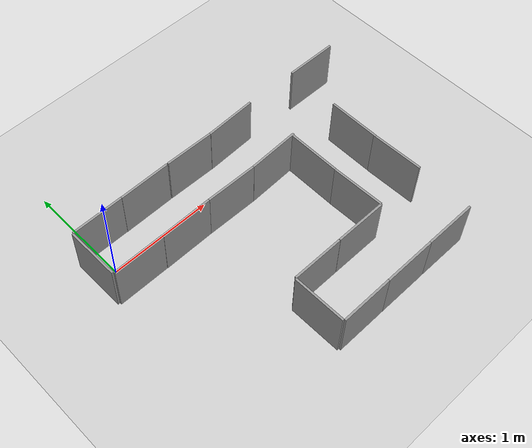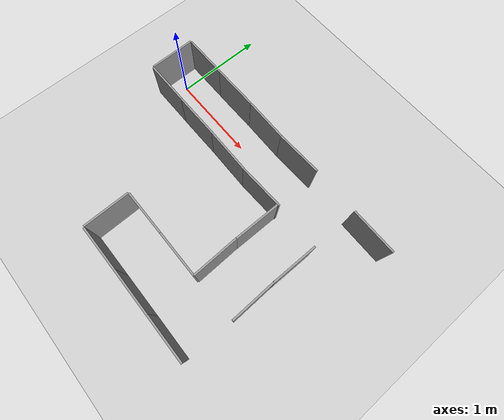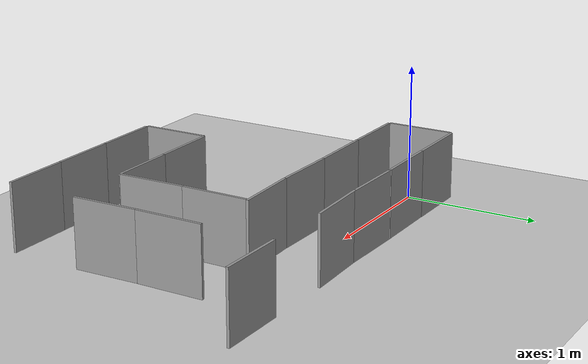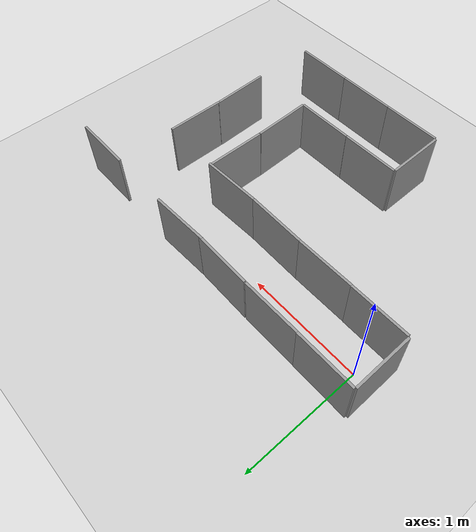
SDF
<sdf version="1.7">
 <world name="default">
  <model name="ground_plane">
   <static>1</static>
   <link name="link">
    <collision name="collision">
     <geometry><plane><normal>0 0 1</normal><size>100 100</size></plane></geometry>
     <surface><friction><ode><mu>100</mu><mu2>50</mu2></ode></friction></surface>
    </collision>
    <visual name="visual">
     <cast_shadows>0</cast_shadows>
     <geometry><plane><normal>0 0 1</normal><size>100 100</size></plane></geometry>
     <material>
      <script><uri>file://media/materials/scripts/gazebo.material</uri><name>Gazebo/Grey</name></script>
     </material>
    </visual>
   </link>
  </model>
  <model name="hsl_module_1">
   <link name="link_2_clone">
    <inertial>
     <mass>1</mass>
     <inertia><ixx>0.01</ixx><ixy>0</ixy><ixz>0</ixz><iyy>0.02</iyy><iyz>0</iyz><izz>0.01</izz></inertia>
    </inertial>
    <pose>0.088798 -0.257146 0 0 -0 0</pose>
    <visual name="visual">
     <geometry><box><size>0.5 0.02 0.5</size></box></geometry>
     <material>
      <lighting>1</lighting>
      <script><uri>file://media/materials/scripts/gazebo.material</uri><name>Gazebo/Grey</name></script>
      <shader type="pixel"><normal_map>__default__</normal_map></shader>
      <ambient>0.3 0.3 0.3 1</ambient>
      <diffuse>0.7 0.7 0.7 1</diffuse>
      <specular>0.01 0.01 0.01 1</specular>
      <emissive>0 0 0 1</emissive>
     </material>
    </visual>
    <collision name="collision">
     <geometry><box><size>0.5 0.02 0.5</size></box></geometry>
     <surface>
      <friction>
       <ode><mu>1</mu><mu2>1</mu2><fdir1>0 0 0</fdir1><slip1>0</slip1><slip2>0</slip2></ode>
       <torsional>
        <coefficient>1</coefficient>
        <patch_radius>0</patch_radius>
        <surface_radius>0</surface_radius>
        <use_patch_radius>1</use_patch_radius>
        <ode><slip>0</slip></ode>
       </torsional>
      </friction>
      <bounce><restitution_coefficient>0</restitution_coefficient><threshold>1e+06</threshold></bounce>
      <contact>
       <collide_without_contact>0</collide_without_contact>
       <collide_without_contact_bitmask>1</collide_without_contact_bitmask>
       <collide_bitmask>1</collide_bitmask>
       <ode>
        <soft_cfm>0</soft_cfm>
        <soft_erp>0.2</soft_erp>
        <kp>1e+13</kp>
        <kd>1</kd>
        <max_vel>0.01</max_vel>
        <min_depth>0</min_depth>
       </ode>
       <bullet>
        <split_impulse>1</split_impulse>
        <split_impulse_penetration_threshold>-0.01</split_impulse_penetration_threshold>
        <soft_cfm>0</soft_cfm>
        <soft_erp>0.2</soft_erp>
        <kp>1e+13</kp>
        <kd>1</kd>
       </bullet>
      </contact>
     </surface>
    </collision>
   </link>
   <link name="link_2_clone_clone">
    <inertial>
     <mass>1</mass>
     <inertia><ixx>0.01</ixx><ixy>0</ixy><ixz>0</ixz><iyy>0.02</iyy><iyz>0</iyz><izz>0.01</izz></inertia>
    </inertial>
    <pose>-0.171704 0.000465 0 0 -0 1.57697</pose>
    <visual name="visual">
     <geometry><box><size>0.5 0.02 0.5</size></box></geometry>
     <material>
      <lighting>1</lighting>
      <script><uri>file://media/materials/scripts/gazebo.material</uri><name>Gazebo/Grey</name></script>
      <shader type="pixel"><normal_map>__default__</normal_map></shader>
      <ambient>0.3 0.3 0.3 1</ambient>
      <diffuse>0.7 0.7 0.7 1</diffuse>
      <specular>0.01 0.01 0.01 1</specular>
      <emissive>0 0 0 1</emissive>
     </material>
    </visual>
    <collision name="collision">
     <geometry><box><size>0.5 0.02 0.5</size></box></geometry>
     <surface>
      <friction>
       <ode><mu>1</mu><mu2>1</mu2><fdir1>0 0 0</fdir1><slip1>0</slip1><slip2>0</slip2></ode>
       <torsional>
        <coefficient>1</coefficient>
        <patch_radius>0</patch_radius>
        <surface_radius>0</surface_radius>
        <use_patch_radius>1</use_patch_radius>
        <ode><slip>0</slip></ode>
       </torsional>
      </friction>
      <bounce><restitution_coefficient>0</restitution_coefficient><threshold>1e+06</threshold></bounce>
      <contact>
       <collide_without_contact>0</collide_without_contact>
       <collide_without_contact_bitmask>1</collide_without_contact_bitmask>
       <collide_bitmask>1</collide_bitmask>
       <ode>
        <soft_cfm>0</soft_cfm>
        <soft_erp>0.2</soft_erp>
        <kp>1e+13</kp>
        <kd>1</kd>
        <max_vel>0.01</max_vel>
        <min_depth>0</min_depth>
       </ode>
       <bullet>
        <split_impulse>1</split_impulse>
        <split_impulse_penetration_threshold>-0.01</split_impulse_penetration_threshold>
        <soft_cfm>0</soft_cfm>
        <soft_erp>0.2</soft_erp>
        <kp>1e+13</kp>
        <kd>1</kd>
       </bullet>
      </contact>
     </surface>
    </collision>
   </link>
   <link name="link_2_clone_clone_0">
    <inertial>
     <mass>1</mass>
     <inertia><ixx>0.01</ixx><ixy>0</ixy><ixz>0</ixz><iyy>0.02</iyy><iyz>0</iyz><izz>0.01</izz></inertia>
    </inertial>
    <pose>0.082906 0.256681 0 0 -0 0</pose>
    <visual name="visual">
     <geometry><box><size>0.5 0.02 0.5</size></box></geometry>
     <material>
      <lighting>1</lighting>
      <script><uri>file://media/materials/scripts/gazebo.material</uri><name>Gazebo/Grey</name></script>
      <shader type="pixel"><normal_map>__default__</normal_map></shader>
      <ambient>0.3 0.3 0.3 1</ambient>
      <diffuse>0.7 0.7 0.7 1</diffuse>
      <specular>0.01 0.01 0.01 1</specular>
      <emissive>0 0 0 1</emissive>
     </material>
    </visual>
    <collision name="collision">
     <geometry><box><size>0.5 0.02 0.5</size></box></geometry>
     <surface>
      <friction>
       <ode><mu>1</mu><mu2>1</mu2><fdir1>0 0 0</fdir1><slip1>0</slip1><slip2>0</slip2></ode>
       <torsional>
        <coefficient>1</coefficient>
        <patch_radius>0</patch_radius>
        <surface_radius>0</surface_radius>
        <use_patch_radius>1</use_patch_radius>
        <ode><slip>0</slip></ode>
       </torsional>
      </friction>
      <bounce><restitution_coefficient>0</restitution_coefficient><threshold>1e+06</threshold></bounce>
      <contact>
       <collide_without_contact>0</collide_without_contact>
       <collide_without_contact_bitmask>1</collide_without_contact_bitmask>
       <collide_bitmask>1</collide_bitmask>
       <ode>
        <soft_cfm>0</soft_cfm>
        <soft_erp>0.2</soft_erp>
        <kp>1e+13</kp>
        <kd>1</kd>
        <max_vel>0.01</max_vel>
        <min_depth>0</min_depth>
       </ode>
       <bullet>
        <split_impulse>1</split_impulse>
        <split_impulse_penetration_threshold>-0.01</split_impulse_penetration_threshold>
        <soft_cfm>0</soft_cfm>
        <soft_erp>0.2</soft_erp>
        <kp>1e+13</kp>
        <kd>1</kd>
       </bullet>
      </contact>
     </surface>
    </collision>
   </link>
   <static>0</static>
   <pose>0.000655 0.000674 0.25 2e-06 5e-06 0.000633</pose>
  </model>
  <model name="hsl_module_2">
   <link name="link_2_clone">
    <inertial>
     <mass>1</mass>
     <inertia><ixx>0.01</ixx><ixy>0</ixy><ixz>0</ixz><iyy>0.02</iyy><iyz>0</iyz><izz>0.01</izz></inertia>
    </inertial>
    <pose>-0.318213 -0.417987 0.25 0 -0 0</pose>
    <visual name="visual">
     <geometry><box><size>0.5 0.02 0.5</size></box></geometry>
     <material>
      <lighting>1</lighting>
      <script><uri>file://media/materials/scripts/gazebo.material</uri><name>Gazebo/Grey</name></script>
      <shader type="pixel"><normal_map>__default__</normal_map></shader>
      <ambient>0.3 0.3 0.3 1</ambient>
      <diffuse>0.7 0.7 0.7 1</diffuse>
      <specular>0.01 0.01 0.01 1</specular>
      <emissive>0 0 0 1</emissive>
     </material>
    </visual>
    <collision name="collision">
     <geometry><box><size>0.5 0.02 0.5</size></box></geometry>
     <surface>
      <friction>
       <ode><mu>1</mu><mu2>1</mu2><fdir1>0 0 0</fdir1><slip1>0</slip1><slip2>0</slip2></ode>
       <torsional>
        <coefficient>1</coefficient>
        <patch_radius>0</patch_radius>
        <surface_radius>0</surface_radius>
        <use_patch_radius>1</use_patch_radius>
        <ode><slip>0</slip></ode>
       </torsional>
      </friction>
      <bounce><restitution_coefficient>0</restitution_coefficient><threshold>1e+06</threshold></bounce>
      <contact>
       <collide_without_contact>0</collide_without_contact>
       <collide_without_contact_bitmask>1</collide_without_contact_bitmask>
       <collide_bitmask>1</collide_bitmask>
       <ode>
        <soft_cfm>0</soft_cfm>
        <soft_erp>0.2</soft_erp>
        <kp>1e+13</kp>
        <kd>1</kd>
        <max_vel>0.01</max_vel>
        <min_depth>0</min_depth>
       </ode>
       <bullet>
        <split_impulse>1</split_impulse>
        <split_impulse_penetration_threshold>-0.01</split_impulse_penetration_threshold>
        <soft_cfm>0</soft_cfm>
        <soft_erp>0.2</soft_erp>
        <kp>1e+13</kp>
        <kd>1</kd>
       </bullet>
      </contact>
     </surface>
    </collision>
   </link>
   <link name="link_2_clone_clone_0">
    <inertial>
     <mass>1</mass>
     <inertia><ixx>0.01</ixx><ixy>0</ixy><ixz>0</ixz><iyy>0.02</iyy><iyz>0</iyz><izz>0.01</izz></inertia>
    </inertial>
    <pose>-0.324105 0.095839 0.25 0 -0 0</pose>
    <visual name="visual">
     <geometry><box><size>0.5 0.02 0.5</size></box></geometry>
     <material>
      <lighting>1</lighting>
      <script><uri>file://media/materials/scripts/gazebo.material</uri><name>Gazebo/Grey</name></script>
      <shader type="pixel"><normal_map>__default__</normal_map></shader>
      <ambient>0.3 0.3 0.3 1</ambient>
      <diffuse>0.7 0.7 0.7 1</diffuse>
      <specular>0.01 0.01 0.01 1</specular>
      <emissive>0 0 0 1</emissive>
     </material>
    </visual>
    <collision name="collision">
     <geometry><box><size>0.5 0.02 0.5</size></box></geometry>
     <surface>
      <friction>
       <ode><mu>1</mu><mu2>1</mu2><fdir1>0 0 0</fdir1><slip1>0</slip1><slip2>0</slip2></ode>
       <torsional>
        <coefficient>1</coefficient>
        <patch_radius>0</patch_radius>
        <surface_radius>0</surface_radius>
        <use_patch_radius>1</use_patch_radius>
        <ode><slip>0</slip></ode>
       </torsional>
      </friction>
      <bounce><restitution_coefficient>0</restitution_coefficient><threshold>1e+06</threshold></bounce>
      <contact>
       <collide_without_contact>0</collide_without_contact>
       <collide_without_contact_bitmask>1</collide_without_contact_bitmask>
       <collide_bitmask>1</collide_bitmask>
       <ode>
        <soft_cfm>0</soft_cfm>
        <soft_erp>0.2</soft_erp>
        <kp>1e+13</kp>
        <kd>1</kd>
        <max_vel>0.01</max_vel>
        <min_depth>0</min_depth>
       </ode>
       <bullet>
        <split_impulse>1</split_impulse>
        <split_impulse_penetration_threshold>-0.01</split_impulse_penetration_threshold>
        <soft_cfm>0</soft_cfm>
        <soft_erp>0.2</soft_erp>
        <kp>1e+13</kp>
        <kd>1</kd>
       </bullet>
      </contact>
     </surface>
    </collision>
   </link>
   <static>0</static>
   <pose>0.905522 0.163405 -1.9e-05 2e-06 -5e-06 0.005973</pose>
  </model>
  <model name="hsl_module_2_clone">
   <link name="link_2_clone">
    <inertial>
     <mass>1</mass>
     <inertia><ixx>0.01</ixx><ixy>0</ixy><ixz>0</ixz><iyy>0.02</iyy><iyz>0</iyz><izz>0.01</izz></inertia>
    </inertial>
    <pose>-0.318213 -0.417987 0.25 0 -0 0</pose>
    <visual name="visual">
     <geometry><box><size>0.5 0.02 0.5</size></box></geometry>
     <material>
      <lighting>1</lighting>
      <script><uri>file://media/materials/scripts/gazebo.material</uri><name>Gazebo/Grey</name></script>
      <shader type="pixel"><normal_map>__default__</normal_map></shader>
      <ambient>0.3 0.3 0.3 1</ambient>
      <diffuse>0.7 0.7 0.7 1</diffuse>
      <specular>0.01 0.01 0.01 1</specular>
      <emissive>0 0 0 1</emissive>
     </material>
    </visual>
    <collision name="collision">
     <geometry><box><size>0.5 0.02 0.5</size></box></geometry>
     <surface>
      <friction>
       <ode><mu>1</mu><mu2>1</mu2><fdir1>0 0 0</fdir1><slip1>0</slip1><slip2>0</slip2></ode>
       <torsional>
        <coefficient>1</coefficient>
        <patch_radius>0</patch_radius>
        <surface_radius>0</surface_radius>
        <use_patch_radius>1</use_patch_radius>
        <ode><slip>0</slip></ode>
       </torsional>
      </friction>
      <bounce><restitution_coefficient>0</restitution_coefficient><threshold>1e+06</threshold></bounce>
      <contact>
       <collide_without_contact>0</collide_without_contact>
       <collide_without_contact_bitmask>1</collide_without_contact_bitmask>
       <collide_bitmask>1</collide_bitmask>
       <ode>
        <soft_cfm>0</soft_cfm>
        <soft_erp>0.2</soft_erp>
        <kp>1e+13</kp>
        <kd>1</kd>
        <max_vel>0.01</max_vel>
        <min_depth>0</min_depth>
       </ode>
       <bullet>
        <split_impulse>1</split_impulse>
        <split_impulse_penetration_threshold>-0.01</split_impulse_penetration_threshold>
        <soft_cfm>0</soft_cfm>
        <soft_erp>0.2</soft_erp>
        <kp>1e+13</kp>
        <kd>1</kd>
       </bullet>
      </contact>
     </surface>
    </collision>
   </link>
   <link name="link_2_clone_clone_0">
    <inertial>
     <mass>1</mass>
     <inertia><ixx>0.01</ixx><ixy>0</ixy><ixz>0</ixz><iyy>0.02</iyy><iyz>0</iyz><izz>0.01</izz></inertia>
    </inertial>
    <pose>-0.324105 0.095839 0.25 0 -0 0</pose>
    <visual name="visual">
     <geometry><box><size>0.5 0.02 0.5</size></box></geometry>
     <material>
      <lighting>1</lighting>
      <script><uri>file://media/materials/scripts/gazebo.material</uri><name>Gazebo/Grey</name></script>
      <shader type="pixel"><normal_map>__default__</normal_map></shader>
      <ambient>0.3 0.3 0.3 1</ambient>
      <diffuse>0.7 0.7 0.7 1</diffuse>
      <specular>0.01 0.01 0.01 1</specular>
      <emissive>0 0 0 1</emissive>
     </material>
    </visual>
    <collision name="collision">
     <geometry><box><size>0.5 0.02 0.5</size></box></geometry>
     <surface>
      <friction>
       <ode><mu>1</mu><mu2>1</mu2><fdir1>0 0 0</fdir1><slip1>0</slip1><slip2>0</slip2></ode>
       <torsional>
        <coefficient>1</coefficient>
        <patch_radius>0</patch_radius>
        <surface_radius>0</surface_radius>
        <use_patch_radius>1</use_patch_radius>
        <ode><slip>0</slip></ode>
       </torsional>
      </friction>
      <bounce><restitution_coefficient>0</restitution_coefficient><threshold>1e+06</threshold></bounce>
      <contact>
       <collide_without_contact>0</collide_without_contact>
       <collide_without_contact_bitmask>1</collide_without_contact_bitmask>
       <collide_bitmask>1</collide_bitmask>
       <ode>
        <soft_cfm>0</soft_cfm>
        <soft_erp>0.2</soft_erp>
        <kp>1e+13</kp>
        <kd>1</kd>
        <max_vel>0.01</max_vel>
        <min_depth>0</min_depth>
       </ode>
       <bullet>
        <split_impulse>1</split_impulse>
        <split_impulse_penetration_threshold>-0.01</split_impulse_penetration_threshold>
        <soft_cfm>0</soft_cfm>
        <soft_erp>0.2</soft_erp>
        <kp>1e+13</kp>
        <kd>1</kd>
       </bullet>
      </contact>
     </surface>
    </collision>
   </link>
   <static>0</static>
   <pose>1.41411 0.154595 -1e-06 -2e-06 -0 -0.014227</pose>
  </model>
  <model name="hsl_module_2_clone_clone">
   <link name="link_2_clone">
    <inertial>
     <mass>1</mass>
     <inertia><ixx>0.01</ixx><ixy>0</ixy><ixz>0</ixz><iyy>0.02</iyy><iyz>0</iyz><izz>0.01</izz></inertia>
    </inertial>
    <pose>-0.318213 -0.417987 0.25 0 -0 0</pose>
    <visual name="visual">
     <geometry><box><size>0.5 0.02 0.5</size></box></geometry>
     <material>
      <lighting>1</lighting>
      <script><uri>file://media/materials/scripts/gazebo.material</uri><name>Gazebo/Grey</name></script>
      <shader type="pixel"><normal_map>__default__</normal_map></shader>
      <ambient>0.3 0.3 0.3 1</ambient>
      <diffuse>0.7 0.7 0.7 1</diffuse>
      <specular>0.01 0.01 0.01 1</specular>
      <emissive>0 0 0 1</emissive>
     </material>
    </visual>
    <collision name="collision">
     <geometry><box><size>0.5 0.02 0.5</size></box></geometry>
     <surface>
      <friction>
       <ode><mu>1</mu><mu2>1</mu2><fdir1>0 0 0</fdir1><slip1>0</slip1><slip2>0</slip2></ode>
       <torsional>
        <coefficient>1</coefficient>
        <patch_radius>0</patch_radius>
        <surface_radius>0</surface_radius>
        <use_patch_radius>1</use_patch_radius>
        <ode><slip>0</slip></ode>
       </torsional>
      </friction>
      <bounce><restitution_coefficient>0</restitution_coefficient><threshold>1e+06</threshold></bounce>
      <contact>
       <collide_without_contact>0</collide_without_contact>
       <collide_without_contact_bitmask>1</collide_without_contact_bitmask>
       <collide_bitmask>1</collide_bitmask>
       <ode>
        <soft_cfm>0</soft_cfm>
        <soft_erp>0.2</soft_erp>
        <kp>1e+13</kp>
        <kd>1</kd>
        <max_vel>0.01</max_vel>
        <min_depth>0</min_depth>
       </ode>
       <bullet>
        <split_impulse>1</split_impulse>
        <split_impulse_penetration_threshold>-0.01</split_impulse_penetration_threshold>
        <soft_cfm>0</soft_cfm>
        <soft_erp>0.2</soft_erp>
        <kp>1e+13</kp>
        <kd>1</kd>
       </bullet>
      </contact>
     </surface>
    </collision>
   </link>
   <link name="link_2_clone_clone_0">
    <inertial>
     <mass>1</mass>
     <inertia><ixx>0.01</ixx><ixy>0</ixy><ixz>0</ixz><iyy>0.02</iyy><iyz>0</iyz><izz>0.01</izz></inertia>
    </inertial>
    <pose>-0.324105 0.095839 0.25 0 -0 0</pose>
    <visual name="visual">
     <geometry><box><size>0.5 0.02 0.5</size></box></geometry>
     <material>
      <lighting>1</lighting>
      <script><uri>file://media/materials/scripts/gazebo.material</uri><name>Gazebo/Grey</name></script>
      <shader type="pixel"><normal_map>__default__</normal_map></shader>
      <ambient>0.3 0.3 0.3 1</ambient>
      <diffuse>0.7 0.7 0.7 1</diffuse>
      <specular>0.01 0.01 0.01 1</specular>
      <emissive>0 0 0 1</emissive>
     </material>
    </visual>
    <collision name="collision">
     <geometry><box><size>0.5 0.02 0.5</size></box></geometry>
     <surface>
      <friction>
       <ode><mu>1</mu><mu2>1</mu2><fdir1>0 0 0</fdir1><slip1>0</slip1><slip2>0</slip2></ode>
       <torsional>
        <coefficient>1</coefficient>
        <patch_radius>0</patch_radius>
        <surface_radius>0</surface_radius>
        <use_patch_radius>1</use_patch_radius>
        <ode><slip>0</slip></ode>
       </torsional>
      </friction>
      <bounce><restitution_coefficient>0</restitution_coefficient><threshold>1e+06</threshold></bounce>
      <contact>
       <collide_without_contact>0</collide_without_contact>
       <collide_without_contact_bitmask>1</collide_without_contact_bitmask>
       <collide_bitmask>1</collide_bitmask>
       <ode>
        <soft_cfm>0</soft_cfm>
        <soft_erp>0.2</soft_erp>
        <kp>1e+13</kp>
        <kd>1</kd>
        <max_vel>0.01</max_vel>
        <min_depth>0</min_depth>
       </ode>
       <bullet>
        <split_impulse>1</split_impulse>
        <split_impulse_penetration_threshold>-0.01</split_impulse_penetration_threshold>
        <soft_cfm>0</soft_cfm>
        <soft_erp>0.2</soft_erp>
        <kp>1e+13</kp>
        <kd>1</kd>
       </bullet>
      </contact>
     </surface>
    </collision>
   </link>
   <static>0</static>
   <pose>1.89258 0.176167 -2e-06 2e-06 5e-06 0.037615</pose>
  </model>
  <model name="hsl_module_2_0">
   <link name="link_2_clone">
    <inertial>
     <mass>1</mass>
     <inertia><ixx>0.01</ixx><ixy>0</ixy><ixz>0</ixz><iyy>0.02</iyy><iyz>0</iyz><izz>0.01</izz></inertia>
    </inertial>
    <pose>-0.318213 -0.417987 0.25 0 -0 0</pose>
    <visual name="visual">
     <geometry><box><size>0.5 0.02 0.5</size></box></geometry>
     <material>
      <lighting>1</lighting>
      <script><uri>file://media/materials/scripts/gazebo.material</uri><name>Gazebo/Grey</name></script>
      <shader type="pixel"><normal_map>__default__</normal_map></shader>
      <ambient>0.3 0.3 0.3 1</ambient>
      <diffuse>0.7 0.7 0.7 1</diffuse>
      <specular>0.01 0.01 0.01 1</specular>
      <emissive>0 0 0 1</emissive>
     </material>
    </visual>
    <collision name="collision">
     <geometry><box><size>0.5 0.02 0.5</size></box></geometry>
     <surface>
      <friction>
       <ode><mu>1</mu><mu2>1</mu2><fdir1>0 0 0</fdir1><slip1>0</slip1><slip2>0</slip2></ode>
       <torsional>
        <coefficient>1</coefficient>
        <patch_radius>0</patch_radius>
        <surface_radius>0</surface_radius>
        <use_patch_radius>1</use_patch_radius>
        <ode><slip>0</slip></ode>
       </torsional>
      </friction>
      <bounce><restitution_coefficient>0</restitution_coefficient><threshold>1e+06</threshold></bounce>
      <contact>
       <collide_without_contact>0</collide_without_contact>
       <collide_without_contact_bitmask>1</collide_without_contact_bitmask>
       <collide_bitmask>1</collide_bitmask>
       <ode>
        <soft_cfm>0</soft_cfm>
        <soft_erp>0.2</soft_erp>
        <kp>1e+13</kp>
        <kd>1</kd>
        <max_vel>0.01</max_vel>
        <min_depth>0</min_depth>
       </ode>
       <bullet>
        <split_impulse>1</split_impulse>
        <split_impulse_penetration_threshold>-0.01</split_impulse_penetration_threshold>
        <soft_cfm>0</soft_cfm>
        <soft_erp>0.2</soft_erp>
        <kp>1e+13</kp>
        <kd>1</kd>
       </bullet>
      </contact>
     </surface>
    </collision>
   </link>
   <link name="link_2_clone_clone_0">
    <inertial>
     <mass>1</mass>
     <inertia><ixx>0.01</ixx><ixy>0</ixy><ixz>0</ixz><iyy>0.02</iyy><iyz>0</iyz><izz>0.01</izz></inertia>
    </inertial>
    <pose>-0.324105 0.095839 0.25 0 -0 0</pose>
    <visual name="visual">
     <geometry><box><size>0.5 0.02 0.5</size></box></geometry>
     <material>
      <lighting>1</lighting>
      <script><uri>file://media/materials/scripts/gazebo.material</uri><name>Gazebo/Grey</name></script>
      <shader type="pixel"><normal_map>__default__</normal_map></shader>
      <ambient>0.3 0.3 0.3 1</ambient>
      <diffuse>0.7 0.7 0.7 1</diffuse>
      <specular>0.01 0.01 0.01 1</specular>
      <emissive>0 0 0 1</emissive>
     </material>
    </visual>
    <collision name="collision">
     <geometry><box><size>0.5 0.02 0.5</size></box></geometry>
     <surface>
      <friction>
       <ode><mu>1</mu><mu2>1</mu2><fdir1>0 0 0</fdir1><slip1>0</slip1><slip2>0</slip2></ode>
       <torsional>
        <coefficient>1</coefficient>
        <patch_radius>0</patch_radius>
        <surface_radius>0</surface_radius>
        <use_patch_radius>1</use_patch_radius>
        <ode><slip>0</slip></ode>
       </torsional>
      </friction>
      <bounce><restitution_coefficient>0</restitution_coefficient><threshold>1e+06</threshold></bounce>
      <contact>
       <collide_without_contact>0</collide_without_contact>
       <collide_without_contact_bitmask>1</collide_without_contact_bitmask>
       <collide_bitmask>1</collide_bitmask>
       <ode>
        <soft_cfm>0</soft_cfm>
        <soft_erp>0.2</soft_erp>
        <kp>1e+13</kp>
        <kd>1</kd>
        <max_vel>0.01</max_vel>
        <min_depth>0</min_depth>
       </ode>
       <bullet>
        <split_impulse>1</split_impulse>
        <split_impulse_penetration_threshold>-0.01</split_impulse_penetration_threshold>
        <soft_cfm>0</soft_cfm>
        <soft_erp>0.2</soft_erp>
        <kp>1e+13</kp>
        <kd>1</kd>
       </bullet>
      </contact>
     </surface>
    </collision>
   </link>
   <static>0</static>
   <pose>2.23795 -0.825695 -0 0 3e-06 -1.57629</pose>
  </model>
  <model name="hsl_module_2_0_clone">
   <link name="link_2_clone">
    <inertial>
     <mass>1</mass>
     <inertia><ixx>0.01</ixx><ixy>0</ixy><ixz>0</ixz><iyy>0.02</iyy><iyz>0</iyz><izz>0.01</izz></inertia>
    </inertial>
    <pose>-0.318213 -0.417987 0.25 0 -0 0</pose>
    <visual name="visual">
     <geometry><box><size>0.5 0.02 0.5</size></box></geometry>
     <material>
      <lighting>1</lighting>
      <script><uri>file://media/materials/scripts/gazebo.material</uri><name>Gazebo/Grey</name></script>
      <shader type="pixel"><normal_map>__default__</normal_map></shader>
      <ambient>0.3 0.3 0.3 1</ambient>
      <diffuse>0.7 0.7 0.7 1</diffuse>
      <specular>0.01 0.01 0.01 1</specular>
      <emissive>0 0 0 1</emissive>
     </material>
    </visual>
    <collision name="collision">
     <geometry><box><size>0.5 0.02 0.5</size></box></geometry>
     <surface>
      <friction>
       <ode><mu>1</mu><mu2>1</mu2><fdir1>0 0 0</fdir1><slip1>0</slip1><slip2>0</slip2></ode>
       <torsional>
        <coefficient>1</coefficient>
        <patch_radius>0</patch_radius>
        <surface_radius>0</surface_radius>
        <use_patch_radius>1</use_patch_radius>
        <ode><slip>0</slip></ode>
       </torsional>
      </friction>
      <bounce><restitution_coefficient>0</restitution_coefficient><threshold>1e+06</threshold></bounce>
      <contact>
       <collide_without_contact>0</collide_without_contact>
       <collide_without_contact_bitmask>1</collide_without_contact_bitmask>
       <collide_bitmask>1</collide_bitmask>
       <ode>
        <soft_cfm>0</soft_cfm>
        <soft_erp>0.2</soft_erp>
        <kp>1e+13</kp>
        <kd>1</kd>
        <max_vel>0.01</max_vel>
        <min_depth>0</min_depth>
       </ode>
       <bullet>
        <split_impulse>1</split_impulse>
        <split_impulse_penetration_threshold>-0.01</split_impulse_penetration_threshold>
        <soft_cfm>0</soft_cfm>
        <soft_erp>0.2</soft_erp>
        <kp>1e+13</kp>
        <kd>1</kd>
       </bullet>
      </contact>
     </surface>
    </collision>
   </link>
   <link name="link_2_clone_clone_0">
    <inertial>
     <mass>1</mass>
     <inertia><ixx>0.01</ixx><ixy>0</ixy><ixz>0</ixz><iyy>0.02</iyy><iyz>0</iyz><izz>0.01</izz></inertia>
    </inertial>
    <pose>-0.324105 0.095839 0.25 0 -0 0</pose>
    <visual name="visual">
     <geometry><box><size>0.5 0.02 0.5</size></box></geometry>
     <material>
      <lighting>1</lighting>
      <script><uri>file://media/materials/scripts/gazebo.material</uri><name>Gazebo/Grey</name></script>
      <shader type="pixel"><normal_map>__default__</normal_map></shader>
      <ambient>0.3 0.3 0.3 1</ambient>
      <diffuse>0.7 0.7 0.7 1</diffuse>
      <specular>0.01 0.01 0.01 1</specular>
      <emissive>0 0 0 1</emissive>
     </material>
    </visual>
    <collision name="collision">
     <geometry><box><size>0.5 0.02 0.5</size></box></geometry>
     <surface>
      <friction>
       <ode><mu>1</mu><mu2>1</mu2><fdir1>0 0 0</fdir1><slip1>0</slip1><slip2>0</slip2></ode>
       <torsional>
        <coefficient>1</coefficient>
        <patch_radius>0</patch_radius>
        <surface_radius>0</surface_radius>
        <use_patch_radius>1</use_patch_radius>
        <ode><slip>0</slip></ode>
       </torsional>
      </friction>
      <bounce><restitution_coefficient>0</restitution_coefficient><threshold>1e+06</threshold></bounce>
      <contact>
       <collide_without_contact>0</collide_without_contact>
       <collide_without_contact_bitmask>1</collide_without_contact_bitmask>
       <collide_bitmask>1</collide_bitmask>
       <ode>
        <soft_cfm>0</soft_cfm>
        <soft_erp>0.2</soft_erp>
        <kp>1e+13</kp>
        <kd>1</kd>
        <max_vel>0.01</max_vel>
        <min_depth>0</min_depth>
       </ode>
       <bullet>
        <split_impulse>1</split_impulse>
        <split_impulse_penetration_threshold>-0.01</split_impulse_penetration_threshold>
        <soft_cfm>0</soft_cfm>
        <soft_erp>0.2</soft_erp>
        <kp>1e+13</kp>
        <kd>1</kd>
       </bullet>
      </contact>
     </surface>
    </collision>
   </link>
   <static>0</static>
   <pose>2.25229 -1.3124 0 1e-06 -0 -1.544</pose>
  </model>
  <model name="hsl_module_2_clone_clone_clone">
   <link name="link_2_clone">
    <inertial>
     <mass>1</mass>
     <inertia><ixx>0.01</ixx><ixy>0</ixy><ixz>0</ixz><iyy>0.02</iyy><iyz>0</iyz><izz>0.01</izz></inertia>
    </inertial>
    <pose>-0.318213 -0.417987 0.25 0 -0 0</pose>
    <visual name="visual">
     <geometry><box><size>0.5 0.02 0.5</size></box></geometry>
     <material>
      <lighting>1</lighting>
      <script><uri>file://media/materials/scripts/gazebo.material</uri><name>Gazebo/Grey</name></script>
      <shader type="pixel"><normal_map>__default__</normal_map></shader>
      <ambient>0.3 0.3 0.3 1</ambient>
      <diffuse>0.7 0.7 0.7 1</diffuse>
      <specular>0.01 0.01 0.01 1</specular>
      <emissive>0 0 0 1</emissive>
     </material>
    </visual>
    <collision name="collision">
     <geometry><box><size>0.5 0.02 0.5</size></box></geometry>
     <surface>
      <friction>
       <ode><mu>1</mu><mu2>1</mu2><fdir1>0 0 0</fdir1><slip1>0</slip1><slip2>0</slip2></ode>
       <torsional>
        <coefficient>1</coefficient>
        <patch_radius>0</patch_radius>
        <surface_radius>0</surface_radius>
        <use_patch_radius>1</use_patch_radius>
        <ode><slip>0</slip></ode>
       </torsional>
      </friction>
      <bounce><restitution_coefficient>0</restitution_coefficient><threshold>1e+06</threshold></bounce>
      <contact>
       <collide_without_contact>0</collide_without_contact>
       <collide_without_contact_bitmask>1</collide_without_contact_bitmask>
       <collide_bitmask>1</collide_bitmask>
       <ode>
        <soft_cfm>0</soft_cfm>
        <soft_erp>0.2</soft_erp>
        <kp>1e+13</kp>
        <kd>1</kd>
        <max_vel>0.01</max_vel>
        <min_depth>0</min_depth>
       </ode>
       <bullet>
        <split_impulse>1</split_impulse>
        <split_impulse_penetration_threshold>-0.01</split_impulse_penetration_threshold>
        <soft_cfm>0</soft_cfm>
        <soft_erp>0.2</soft_erp>
        <kp>1e+13</kp>
        <kd>1</kd>
       </bullet>
      </contact>
     </surface>
    </collision>
   </link>
   <link name="link_2_clone_clone_0">
    <inertial>
     <mass>1</mass>
     <inertia><ixx>0.01</ixx><ixy>0</ixy><ixz>0</ixz><iyy>0.02</iyy><iyz>0</iyz><izz>0.01</izz></inertia>
    </inertial>
    <pose>-0.324105 0.095839 0.25 0 -0 0</pose>
    <visual name="visual">
     <geometry><box><size>0.5 0.02 0.5</size></box></geometry>
     <material>
      <lighting>1</lighting>
      <script><uri>file://media/materials/scripts/gazebo.material</uri><name>Gazebo/Grey</name></script>
      <shader type="pixel"><normal_map>__default__</normal_map></shader>
      <ambient>0.3 0.3 0.3 1</ambient>
      <diffuse>0.7 0.7 0.7 1</diffuse>
      <specular>0.01 0.01 0.01 1</specular>
      <emissive>0 0 0 1</emissive>
     </material>
    </visual>
    <collision name="collision">
     <geometry><box><size>0.5 0.02 0.5</size></box></geometry>
     <surface>
      <friction>
       <ode><mu>1</mu><mu2>1</mu2><fdir1>0 0 0</fdir1><slip1>0</slip1><slip2>0</slip2></ode>
       <torsional>
        <coefficient>1</coefficient>
        <patch_radius>0</patch_radius>
        <surface_radius>0</surface_radius>
        <use_patch_radius>1</use_patch_radius>
        <ode><slip>0</slip></ode>
       </torsional>
      </friction>
      <bounce><restitution_coefficient>0</restitution_coefficient><threshold>1e+06</threshold></bounce>
      <contact>
       <collide_without_contact>0</collide_without_contact>
       <collide_without_contact_bitmask>1</collide_without_contact_bitmask>
       <collide_bitmask>1</collide_bitmask>
       <ode>
        <soft_cfm>0</soft_cfm>
        <soft_erp>0.2</soft_erp>
        <kp>1e+13</kp>
        <kd>1</kd>
        <max_vel>0.01</max_vel>
        <min_depth>0</min_depth>
       </ode>
       <bullet>
        <split_impulse>1</split_impulse>
        <split_impulse_penetration_threshold>-0.01</split_impulse_penetration_threshold>
        <soft_cfm>0</soft_cfm>
        <soft_erp>0.2</soft_erp>
        <kp>1e+13</kp>
        <kd>1</kd>
       </bullet>
      </contact>
     </surface>
    </collision>
   </link>
   <static>0</static>
   <pose>1.90563 -1.35543 -7e-06 -0 1.2e-05 3.6e-05</pose>
  </model>
  <model name="hsl_module_5">
   <link name="link_2_clone_clone">
    <inertial>
     <mass>1</mass>
     <inertia><ixx>0.01</ixx><ixy>0</ixy><ixz>0</ixz><iyy>0.02</iyy><iyz>0</iyz><izz>0.01</izz></inertia>
    </inertial>
    <pose>-0.444864 -0.291837 0.25 0 -0 1.57298</pose>
    <visual name="visual">
     <geometry><box><size>0.5 0.02 0.5</size></box></geometry>
     <material>
      <lighting>1</lighting>
      <script><uri>file://media/materials/scripts/gazebo.material</uri><name>Gazebo/Grey</name></script>
      <shader type="pixel"><normal_map>__default__</normal_map></shader>
      <ambient>0.3 0.3 0.3 1</ambient>
      <diffuse>0.7 0.7 0.7 1</diffuse>
      <specular>0.01 0.01 0.01 1</specular>
      <emissive>0 0 0 1</emissive>
     </material>
    </visual>
    <collision name="collision">
     <geometry><box><size>0.5 0.02 0.5</size></box></geometry>
     <surface>
      <friction>
       <ode><mu>1</mu><mu2>1</mu2><fdir1>0 0 0</fdir1><slip1>0</slip1><slip2>0</slip2></ode>
       <torsional>
        <coefficient>1</coefficient>
        <patch_radius>0</patch_radius>
        <surface_radius>0</surface_radius>
        <use_patch_radius>1</use_patch_radius>
        <ode><slip>0</slip></ode>
       </torsional>
      </friction>
      <bounce><restitution_coefficient>0</restitution_coefficient><threshold>1e+06</threshold></bounce>
      <contact>
       <collide_without_contact>0</collide_without_contact>
       <collide_without_contact_bitmask>1</collide_without_contact_bitmask>
       <collide_bitmask>1</collide_bitmask>
       <ode>
        <soft_cfm>0</soft_cfm>
        <soft_erp>0.2</soft_erp>
        <kp>1e+13</kp>
        <kd>1</kd>
        <max_vel>0.01</max_vel>
        <min_depth>0</min_depth>
       </ode>
       <bullet>
        <split_impulse>1</split_impulse>
        <split_impulse_penetration_threshold>-0.01</split_impulse_penetration_threshold>
        <soft_cfm>0</soft_cfm>
        <soft_erp>0.2</soft_erp>
        <kp>1e+13</kp>
        <kd>1</kd>
       </bullet>
      </contact>
     </surface>
    </collision>
   </link>
   <static>0</static>
   <pose>1.79757 -1.32728 -0 -3e-06 0 1.56644</pose>
  </model>
  <model name="hsl_module_1_clone">
   <link name="link_2_clone">
    <inertial>
     <mass>1</mass>
     <inertia><ixx>0.01</ixx><ixy>0</ixy><ixz>0</ixz><iyy>0.02</iyy><iyz>0</iyz><izz>0.01</izz></inertia>
    </inertial>
    <pose>0.088798 -0.257146 0 0 -0 0</pose>
    <visual name="visual">
     <geometry><box><size>0.5 0.02 0.5</size></box></geometry>
     <material>
      <lighting>1</lighting>
      <script><uri>file://media/materials/scripts/gazebo.material</uri><name>Gazebo/Grey</name></script>
      <shader type="pixel"><normal_map>__default__</normal_map></shader>
      <ambient>0.3 0.3 0.3 1</ambient>
      <diffuse>0.7 0.7 0.7 1</diffuse>
      <specular>0.01 0.01 0.01 1</specular>
      <emissive>0 0 0 1</emissive>
     </material>
    </visual>
    <collision name="collision">
     <geometry><box><size>0.5 0.02 0.5</size></box></geometry>
     <surface>
      <friction>
       <ode><mu>1</mu><mu2>1</mu2><fdir1>0 0 0</fdir1><slip1>0</slip1><slip2>0</slip2></ode>
       <torsional>
        <coefficient>1</coefficient>
        <patch_radius>0</patch_radius>
        <surface_radius>0</surface_radius>
        <use_patch_radius>1</use_patch_radius>
        <ode><slip>0</slip></ode>
       </torsional>
      </friction>
      <bounce><restitution_coefficient>0</restitution_coefficient><threshold>1e+06</threshold></bounce>
      <contact>
       <collide_without_contact>0</collide_without_contact>
       <collide_without_contact_bitmask>1</collide_without_contact_bitmask>
       <collide_bitmask>1</collide_bitmask>
       <ode>
        <soft_cfm>0</soft_cfm>
        <soft_erp>0.2</soft_erp>
        <kp>1e+13</kp>
        <kd>1</kd>
        <max_vel>0.01</max_vel>
        <min_depth>0</min_depth>
       </ode>
       <bullet>
        <split_impulse>1</split_impulse>
        <split_impulse_penetration_threshold>-0.01</split_impulse_penetration_threshold>
        <soft_cfm>0</soft_cfm>
        <soft_erp>0.2</soft_erp>
        <kp>1e+13</kp>
        <kd>1</kd>
       </bullet>
      </contact>
     </surface>
    </collision>
   </link>
   <link name="link_2_clone_clone">
    <inertial>
     <mass>1</mass>
     <inertia><ixx>0.01</ixx><ixy>0</ixy><ixz>0</ixz><iyy>0.02</iyy><iyz>0</iyz><izz>0.01</izz></inertia>
    </inertial>
    <pose>-0.171704 0.000465 0 0 -0 1.57697</pose>
    <visual name="visual">
     <geometry><box><size>0.5 0.02 0.5</size></box></geometry>
     <material>
      <lighting>1</lighting>
      <script><uri>file://media/materials/scripts/gazebo.material</uri><name>Gazebo/Grey</name></script>
      <shader type="pixel"><normal_map>__default__</normal_map></shader>
      <ambient>0.3 0.3 0.3 1</ambient>
      <diffuse>0.7 0.7 0.7 1</diffuse>
      <specular>0.01 0.01 0.01 1</specular>
      <emissive>0 0 0 1</emissive>
     </material>
    </visual>
    <collision name="collision">
     <geometry><box><size>0.5 0.02 0.5</size></box></geometry>
     <surface>
      <friction>
       <ode><mu>1</mu><mu2>1</mu2><fdir1>0 0 0</fdir1><slip1>0</slip1><slip2>0</slip2></ode>
       <torsional>
        <coefficient>1</coefficient>
        <patch_radius>0</patch_radius>
        <surface_radius>0</surface_radius>
        <use_patch_radius>1</use_patch_radius>
        <ode><slip>0</slip></ode>
       </torsional>
      </friction>
      <bounce><restitution_coefficient>0</restitution_coefficient><threshold>1e+06</threshold></bounce>
      <contact>
       <collide_without_contact>0</collide_without_contact>
       <collide_without_contact_bitmask>1</collide_without_contact_bitmask>
       <collide_bitmask>1</collide_bitmask>
       <ode>
        <soft_cfm>0</soft_cfm>
        <soft_erp>0.2</soft_erp>
        <kp>1e+13</kp>
        <kd>1</kd>
        <max_vel>0.01</max_vel>
        <min_depth>0</min_depth>
       </ode>
       <bullet>
        <split_impulse>1</split_impulse>
        <split_impulse_penetration_threshold>-0.01</split_impulse_penetration_threshold>
        <soft_cfm>0</soft_cfm>
        <soft_erp>0.2</soft_erp>
        <kp>1e+13</kp>
        <kd>1</kd>
       </bullet>
      </contact>
     </surface>
    </collision>
   </link>
   <link name="link_2_clone_clone_0">
    <inertial>
     <mass>1</mass>
     <inertia><ixx>0.01</ixx><ixy>0</ixy><ixz>0</ixz><iyy>0.02</iyy><iyz>0</iyz><izz>0.01</izz></inertia>
    </inertial>
    <pose>0.082906 0.256681 0 0 -0 0</pose>
    <visual name="visual">
     <geometry><box><size>0.5 0.02 0.5</size></box></geometry>
     <material>
      <lighting>1</lighting>
      <script><uri>file://media/materials/scripts/gazebo.material</uri><name>Gazebo/Grey</name></script>
      <shader type="pixel"><normal_map>__default__</normal_map></shader>
      <ambient>0.3 0.3 0.3 1</ambient>
      <diffuse>0.7 0.7 0.7 1</diffuse>
      <specular>0.01 0.01 0.01 1</specular>
      <emissive>0 0 0 1</emissive>
     </material>
    </visual>
    <collision name="collision">
     <geometry><box><size>0.5 0.02 0.5</size></box></geometry>
     <surface>
      <friction>
       <ode><mu>1</mu><mu2>1</mu2><fdir1>0 0 0</fdir1><slip1>0</slip1><slip2>0</slip2></ode>
       <torsional>
        <coefficient>1</coefficient>
        <patch_radius>0</patch_radius>
        <surface_radius>0</surface_radius>
        <use_patch_radius>1</use_patch_radius>
        <ode><slip>0</slip></ode>
       </torsional>
      </friction>
      <bounce><restitution_coefficient>0</restitution_coefficient><threshold>1e+06</threshold></bounce>
      <contact>
       <collide_without_contact>0</collide_without_contact>
       <collide_without_contact_bitmask>1</collide_without_contact_bitmask>
       <collide_bitmask>1</collide_bitmask>
       <ode>
        <soft_cfm>0</soft_cfm>
        <soft_erp>0.2</soft_erp>
        <kp>1e+13</kp>
        <kd>1</kd>
        <max_vel>0.01</max_vel>
        <min_depth>0</min_depth>
       </ode>
       <bullet>
        <split_impulse>1</split_impulse>
        <split_impulse_penetration_threshold>-0.01</split_impulse_penetration_threshold>
        <soft_cfm>0</soft_cfm>
        <soft_erp>0.2</soft_erp>
        <kp>1e+13</kp>
        <kd>1</kd>
       </bullet>
      </contact>
     </surface>
    </collision>
   </link>
   <static>0</static>
   <pose>0.997698 -1.51716 0.249996 -0 -1.2e-05 0.002411</pose>
  </model>
  <model name="hsl_module_5_clone">
   <link name="link_2_clone_clone">
    <inertial>
     <mass>1</mass>
     <inertia><ixx>0.01</ixx><ixy>0</ixy><ixz>0</ixz><iyy>0.02</iyy><iyz>0</iyz><izz>0.01</izz></inertia>
    </inertial>
    <pose>-0.444864 -0.291837 0.25 0 -0 1.57298</pose>
    <visual name="visual">
     <geometry><box><size>0.5 0.02 0.5</size></box></geometry>
     <material>
      <lighting>1</lighting>
      <script><uri>file://media/materials/scripts/gazebo.material</uri><name>Gazebo/Grey</name></script>
      <shader type="pixel"><normal_map>__default__</normal_map></shader>
      <ambient>0.3 0.3 0.3 1</ambient>
      <diffuse>0.7 0.7 0.7 1</diffuse>
      <specular>0.01 0.01 0.01 1</specular>
      <emissive>0 0 0 1</emissive>
     </material>
    </visual>
    <collision name="collision">
     <geometry><box><size>0.5 0.02 0.5</size></box></geometry>
     <surface>
      <friction>
       <ode><mu>1</mu><mu2>1</mu2><fdir1>0 0 0</fdir1><slip1>0</slip1><slip2>0</slip2></ode>
       <torsional>
        <coefficient>1</coefficient>
        <patch_radius>0</patch_radius>
        <surface_radius>0</surface_radius>
        <use_patch_radius>1</use_patch_radius>
        <ode><slip>0</slip></ode>
       </torsional>
      </friction>
      <bounce><restitution_coefficient>0</restitution_coefficient><threshold>1e+06</threshold></bounce>
      <contact>
       <collide_without_contact>0</collide_without_contact>
       <collide_without_contact_bitmask>1</collide_without_contact_bitmask>
       <collide_bitmask>1</collide_bitmask>
       <ode>
        <soft_cfm>0</soft_cfm>
        <soft_erp>0.2</soft_erp>
        <kp>1e+13</kp>
        <kd>1</kd>
        <max_vel>0.01</max_vel>
        <min_depth>0</min_depth>
       </ode>
       <bullet>
        <split_impulse>1</split_impulse>
        <split_impulse_penetration_threshold>-0.01</split_impulse_penetration_threshold>
        <soft_cfm>0</soft_cfm>
        <soft_erp>0.2</soft_erp>
        <kp>1e+13</kp>
        <kd>1</kd>
       </bullet>
      </contact>
     </surface>
    </collision>
   </link>
   <static>0</static>
   <pose>2.29438 0.70625 -1e-05 -1.2e-05 1e-06 1.56043</pose>
  </model>
 </world>
</sdf>
